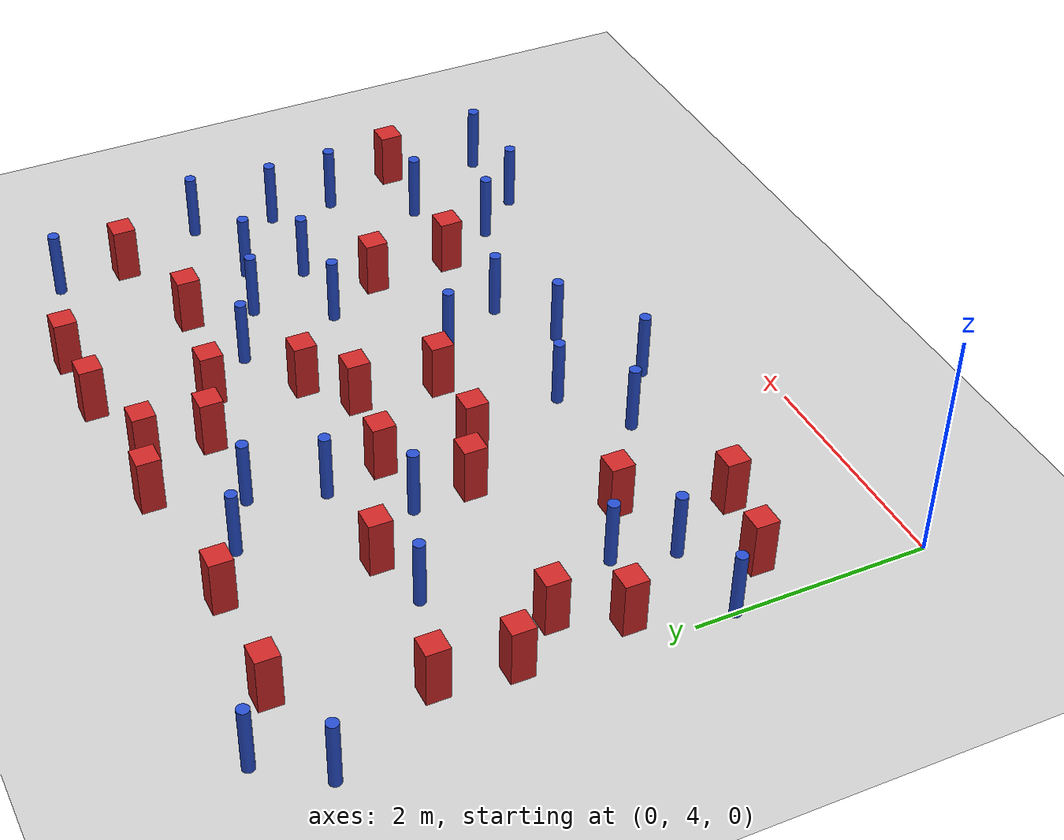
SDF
<sdf version="1.6">
 <world name="default">
  <model name="ground_plane">
   <static>1</static>
   <link name="link">
    <collision name="collision">
     <geometry><plane><normal>0 0 1</normal><size>100 100</size></plane></geometry>
     <surface><friction><ode><mu>100</mu><mu2>50</mu2></ode></friction></surface>
    </collision>
    <visual name="visual">
     <cast_shadows>0</cast_shadows>
     <geometry><plane><normal>0 0 1</normal><size>100 100</size></plane></geometry>
     <material>
      <ambient>1.0 1.0 1.0 1.0</ambient>
      <diffuse>0.8 0.8 0.8 1.0</diffuse>
      <specular>0.01 0.01 0.01 1.000000</specular>
     </material>
    </visual>
   </link>
  </model>
  <model name="pole_obstacle1">
   <static>true</static>
   <pose>0.876120784257 6.24800217098 7.38925637345e-09 -8.471706928e-08 1.24976765086e-08 -1.74513093015e-07</pose>
   <link name="link">
    <pose>0 0 0.3 0 -0 0</pose>
    <inertial>
     <mass>1</mass>
     <inertia><ixx>0.145833</ixx><ixy>0</ixy><ixz>0</ixz><iyy>0.145833</iyy><iyz>0</iyz><izz>0.125</izz></inertia>
    </inertial>
    <collision name="collision">
     <geometry><cylinder><radius>0.05</radius><length>.6</length></cylinder></geometry>
    </collision>
    <visual name="visual">
     <geometry><cylinder><radius>0.05</radius><length>.6</length></cylinder></geometry>
     <material>
      <script><name>Gazebo/Blue</name><uri>file://media/materials/scripts/gazebo.material</uri></script>
     </material>
    </visual>
   </link>
  </model>
  <model name="pole_obstacle2">
   <static>true</static>
   <pose>3.77386475802 6.2816502501 7.38925637345e-09 -8.47170692798e-08 1.24976765033e-08 -1.74513093019e-07</pose>
   <link name="link">
    <pose>0 0 0.3 0 -0 0</pose>
    <inertial>
     <mass>1</mass>
     <inertia><ixx>0.145833</ixx><ixy>0</ixy><ixz>0</ixz><iyy>0.145833</iyy><iyz>0</iyz><izz>0.125</izz></inertia>
    </inertial>
    <collision name="collision">
     <geometry><cylinder><radius>0.05</radius><length>.6</length></cylinder></geometry>
    </collision>
    <visual name="visual">
     <geometry><cylinder><radius>0.05</radius><length>.6</length></cylinder></geometry>
     <material>
      <script><name>Gazebo/Blue</name><uri>file://media/materials/scripts/gazebo.material</uri></script>
     </material>
    </visual>
   </link>
  </model>
  <model name="pole_obstacle5">
   <static>true</static>
   <pose>5.55673570257 4.84575330785 7.38925637345e-09 -8.47170692796e-08 1.24976764786e-08 -1.74513093032e-07</pose>
   <link name="link">
    <pose>0 0 0.3 0 -0 0</pose>
    <inertial>
     <mass>1</mass>
     <inertia><ixx>0.145833</ixx><ixy>0</ixy><ixz>0</ixz><iyy>0.145833</iyy><iyz>0</iyz><izz>0.125</izz></inertia>
    </inertial>
    <collision name="collision">
     <geometry><cylinder><radius>0.05</radius><length>.6</length></cylinder></geometry>
    </collision>
    <visual name="visual">
     <geometry><cylinder><radius>0.05</radius><length>.6</length></cylinder></geometry>
     <material>
      <script><name>Gazebo/Blue</name><uri>file://media/materials/scripts/gazebo.material</uri></script>
     </material>
    </visual>
   </link>
  </model>
  <model name="square_post_obstacle10">
   <static>true</static>
   <pose>5.04197095546 8.18872532669 1.91545236811e-07 -7.35059704564e-06 1.12565212e-07 2.39332434364e-05</pose>
   <link name="link">
    <pose>0 0 0.25 0 -0 0</pose>
    <inertial>
     <mass>100</mass>
     <inertia>
      <ixx>0.166667</ixx>
      <ixy>0</ixy>
      <ixz>0</ixz>
      <iyy>0.166667</iyy>
      <iyz>0</iyz>
      <izz>0.166667</izz>
     </inertia>
    </inertial>
    <collision name="collision"><geometry><box><size>.2 .2 .5</size></box></geometry></collision>
    <visual name="visual">
     <geometry><box><size>.2 .2 .5</size></box></geometry>
     <material>
      <script><name>Gazebo/Red</name><uri>file://media/materials/scripts/gazebo.material</uri></script>
     </material>
    </visual>
   </link>
  </model>
  <model name="pole_obstacle17">
   <static>true</static>
   <pose>6.28319913709 4.87998397393 7.38925637345e-09 -8.47170692796e-08 1.24976764786e-08 -1.74513093032e-07</pose>
   <link name="link">
    <pose>0 0 0.3 0 -0 0</pose>
    <inertial>
     <mass>1</mass>
     <inertia><ixx>0.145833</ixx><ixy>0</ixy><ixz>0</ixz><iyy>0.145833</iyy><iyz>0</iyz><izz>0.125</izz></inertia>
    </inertial>
    <collision name="collision">
     <geometry><cylinder><radius>0.05</radius><length>.6</length></cylinder></geometry>
    </collision>
    <visual name="visual">
     <geometry><cylinder><radius>0.05</radius><length>.6</length></cylinder></geometry>
     <material>
      <script><name>Gazebo/Blue</name><uri>file://media/materials/scripts/gazebo.material</uri></script>
     </material>
    </visual>
   </link>
  </model>
  <model name="square_post_obstacle18">
   <static>true</static>
   <pose>0.229390848685 8.011374936 1.91545236811e-07 -7.35059704564e-06 1.12565212e-07 2.39332434364e-05</pose>
   <link name="link">
    <pose>0 0 0.25 0 -0 0</pose>
    <inertial>
     <mass>100</mass>
     <inertia>
      <ixx>0.166667</ixx>
      <ixy>0</ixy>
      <ixz>0</ixz>
      <iyy>0.166667</iyy>
      <iyz>0</iyz>
      <izz>0.166667</izz>
     </inertia>
    </inertial>
    <collision name="collision"><geometry><box><size>.2 .2 .5</size></box></geometry></collision>
    <visual name="visual">
     <geometry><box><size>.2 .2 .5</size></box></geometry>
     <material>
      <script><name>Gazebo/Red</name><uri>file://media/materials/scripts/gazebo.material</uri></script>
     </material>
    </visual>
   </link>
  </model>
  <model name="pole_obstacle26">
   <static>true</static>
   <pose>-0.239033026966 8.94946432864 7.38925637345e-09 -8.47170692796e-08 1.24976764767e-08 -1.74513093034e-07</pose>
   <link name="link">
    <pose>0 0 0.3 0 -0 0</pose>
    <inertial>
     <mass>1</mass>
     <inertia><ixx>0.145833</ixx><ixy>0</ixy><ixz>0</ixz><iyy>0.145833</iyy><iyz>0</iyz><izz>0.125</izz></inertia>
    </inertial>
    <collision name="collision">
     <geometry><cylinder><radius>0.05</radius><length>.6</length></cylinder></geometry>
    </collision>
    <visual name="visual">
     <geometry><cylinder><radius>0.05</radius><length>.6</length></cylinder></geometry>
     <material>
      <script><name>Gazebo/Blue</name><uri>file://media/materials/scripts/gazebo.material</uri></script>
     </material>
    </visual>
   </link>
  </model>
  <model name="square_post_obstacle20">
   <static>true</static>
   <pose>5.98946311822 8.46246519438 1.91545236811e-07 -7.35059704564e-06 1.12565212e-07 2.39332434364e-05</pose>
   <link name="link">
    <pose>0 0 0.25 0 -0 0</pose>
    <inertial>
     <mass>100</mass>
     <inertia>
      <ixx>0.166667</ixx>
      <ixy>0</ixy>
      <ixz>0</ixz>
      <iyy>0.166667</iyy>
      <iyz>0</iyz>
      <izz>0.166667</izz>
     </inertia>
    </inertial>
    <collision name="collision"><geometry><box><size>.2 .2 .5</size></box></geometry></collision>
    <visual name="visual">
     <geometry><box><size>.2 .2 .5</size></box></geometry>
     <material>
      <script><name>Gazebo/Red</name><uri>file://media/materials/scripts/gazebo.material</uri></script>
     </material>
    </visual>
   </link>
  </model>
  <model name="square_post_obstacle25">
   <static>true</static>
   <pose>3.4216234774 8.55099060213 1.91545236811e-07 -7.35059704564e-06 1.12565212e-07 2.39332434364e-05</pose>
   <link name="link">
    <pose>0 0 0.25 0 -0 0</pose>
    <inertial>
     <mass>100</mass>
     <inertia>
      <ixx>0.166667</ixx>
      <ixy>0</ixy>
      <ixz>0</ixz>
      <iyy>0.166667</iyy>
      <iyz>0</iyz>
      <izz>0.166667</izz>
     </inertia>
    </inertial>
    <collision name="collision"><geometry><box><size>.2 .2 .5</size></box></geometry></collision>
    <visual name="visual">
     <geometry><box><size>.2 .2 .5</size></box></geometry>
     <material>
      <script><name>Gazebo/Red</name><uri>file://media/materials/scripts/gazebo.material</uri></script>
     </material>
    </visual>
   </link>
  </model>
  <model name="square_post_obstacle26">
   <static>true</static>
   <pose>4.22196910336 9.30223217906 1.91545236811e-07 -7.35059704564e-06 1.12565212e-07 2.39332434364e-05</pose>
   <link name="link">
    <pose>0 0 0.25 0 -0 0</pose>
    <inertial>
     <mass>100</mass>
     <inertia>
      <ixx>0.166667</ixx>
      <ixy>0</ixy>
      <ixz>0</ixz>
      <iyy>0.166667</iyy>
      <iyz>0</iyz>
      <izz>0.166667</izz>
     </inertia>
    </inertial>
    <collision name="collision"><geometry><box><size>.2 .2 .5</size></box></geometry></collision>
    <visual name="visual">
     <geometry><box><size>.2 .2 .5</size></box></geometry>
     <material>
      <script><name>Gazebo/Red</name><uri>file://media/materials/scripts/gazebo.material</uri></script>
     </material>
    </visual>
   </link>
  </model>
  <model name="pole_obstacle34">
   <static>true</static>
   <pose>0.00459999047083 5.6634931859 7.38925637345e-09 -8.47170692799e-08 1.24976765051e-08 -1.74513093018e-07</pose>
   <link name="link">
    <pose>0 0 0.3 0 -0 0</pose>
    <inertial>
     <mass>1</mass>
     <inertia><ixx>0.145833</ixx><ixy>0</ixy><ixz>0</ixz><iyy>0.145833</iyy><iyz>0</iyz><izz>0.125</izz></inertia>
    </inertial>
    <collision name="collision">
     <geometry><cylinder><radius>0.05</radius><length>.6</length></cylinder></geometry>
    </collision>
    <visual name="visual">
     <geometry><cylinder><radius>0.05</radius><length>.6</length></cylinder></geometry>
     <material>
      <script><name>Gazebo/Blue</name><uri>file://media/materials/scripts/gazebo.material</uri></script>
     </material>
    </visual>
   </link>
  </model>
  <model name="square_post_obstacle34">
   <static>true</static>
   <pose>2.95867496582 9.22284175794 1.91545236811e-07 -7.35059704564e-06 1.12565212e-07 2.39332434364e-05</pose>
   <link name="link">
    <pose>0 0 0.25 0 -0 0</pose>
    <inertial>
     <mass>100</mass>
     <inertia>
      <ixx>0.166667</ixx>
      <ixy>0</ixy>
      <ixz>0</ixz>
      <iyy>0.166667</iyy>
      <iyz>0</iyz>
      <izz>0.166667</izz>
     </inertia>
    </inertial>
    <collision name="collision"><geometry><box><size>.2 .2 .5</size></box></geometry></collision>
    <visual name="visual">
     <geometry><box><size>.2 .2 .5</size></box></geometry>
     <material>
      <script><name>Gazebo/Red</name><uri>file://media/materials/scripts/gazebo.material</uri></script>
     </material>
    </visual>
   </link>
  </model>
  <model name="pole_obstacle45">
   <static>true</static>
   <pose>1.0894423202 7.73519939335 7.38925637345e-09 -8.47170692799e-08 1.24976765033e-08 -1.74513093018e-07</pose>
   <link name="link">
    <pose>0 0 0.3 0 -0 0</pose>
    <inertial>
     <mass>1</mass>
     <inertia><ixx>0.145833</ixx><ixy>0</ixy><ixz>0</ixz><iyy>0.145833</iyy><iyz>0</iyz><izz>0.125</izz></inertia>
    </inertial>
    <collision name="collision">
     <geometry><cylinder><radius>0.05</radius><length>.6</length></cylinder></geometry>
    </collision>
    <visual name="visual">
     <geometry><cylinder><radius>0.05</radius><length>.6</length></cylinder></geometry>
     <material>
      <script><name>Gazebo/Blue</name><uri>file://media/materials/scripts/gazebo.material</uri></script>
     </material>
    </visual>
   </link>
  </model>
  <model name="square_post_obstacle38">
   <static>true</static>
   <pose>4.9053613051 5.78159586898 1.91545236811e-07 -7.35059704564e-06 1.12565212e-07 2.39332434364e-05</pose>
   <link name="link">
    <pose>0 0 0.25 0 -0 0</pose>
    <inertial>
     <mass>100</mass>
     <inertia>
      <ixx>0.166667</ixx>
      <ixy>0</ixy>
      <ixz>0</ixz>
      <iyy>0.166667</iyy>
      <iyz>0</iyz>
      <izz>0.166667</izz>
     </inertia>
    </inertial>
    <collision name="collision"><geometry><box><size>.2 .2 .5</size></box></geometry></collision>
    <visual name="visual">
     <geometry><box><size>.2 .2 .5</size></box></geometry>
     <material>
      <script><name>Gazebo/Red</name><uri>file://media/materials/scripts/gazebo.material</uri></script>
     </material>
    </visual>
   </link>
  </model>
  <model name="pole_obstacle57">
   <static>true</static>
   <pose>4.08175149637 5.69725566491 7.38925637345e-09 -8.47170692796e-08 1.24976764786e-08 -1.74513093032e-07</pose>
   <link name="link">
    <pose>0 0 0.3 0 -0 0</pose>
    <inertial>
     <mass>1</mass>
     <inertia><ixx>0.145833</ixx><ixy>0</ixy><ixz>0</ixz><iyy>0.145833</iyy><iyz>0</iyz><izz>0.125</izz></inertia>
    </inertial>
    <collision name="collision">
     <geometry><cylinder><radius>0.05</radius><length>.6</length></cylinder></geometry>
    </collision>
    <visual name="visual">
     <geometry><cylinder><radius>0.05</radius><length>.6</length></cylinder></geometry>
     <material>
      <script><name>Gazebo/Blue</name><uri>file://media/materials/scripts/gazebo.material</uri></script>
     </material>
    </visual>
   </link>
  </model>
  <model name="pole_obstacle63">
   <static>true</static>
   <pose>2.46949292795 7.92436977248 7.38925637345e-09 -8.47170692798e-08 1.24976765033e-08 -1.74513093019e-07</pose>
   <link name="link">
    <pose>0 0 0.3 0 -0 0</pose>
    <inertial>
     <mass>1</mass>
     <inertia><ixx>0.145833</ixx><ixy>0</ixy><ixz>0</ixz><iyy>0.145833</iyy><iyz>0</iyz><izz>0.125</izz></inertia>
    </inertial>
    <collision name="collision">
     <geometry><cylinder><radius>0.05</radius><length>.6</length></cylinder></geometry>
    </collision>
    <visual name="visual">
     <geometry><cylinder><radius>0.05</radius><length>.6</length></cylinder></geometry>
     <material>
      <script><name>Gazebo/Blue</name><uri>file://media/materials/scripts/gazebo.material</uri></script>
     </material>
    </visual>
   </link>
  </model>
  <model name="pole_obstacle67">
   <static>true</static>
   <pose>0.739452717041 5.7437439179 7.38925637345e-09 -8.471706928e-08 1.24976765086e-08 -1.74513093015e-07</pose>
   <link name="link">
    <pose>0 0 0.3 0 -0 0</pose>
    <inertial>
     <mass>1</mass>
     <inertia><ixx>0.145833</ixx><ixy>0</ixy><ixz>0</ixz><iyy>0.145833</iyy><iyz>0</iyz><izz>0.125</izz></inertia>
    </inertial>
    <collision name="collision">
     <geometry><cylinder><radius>0.05</radius><length>.6</length></cylinder></geometry>
    </collision>
    <visual name="visual">
     <geometry><cylinder><radius>0.05</radius><length>.6</length></cylinder></geometry>
     <material>
      <script><name>Gazebo/Blue</name><uri>file://media/materials/scripts/gazebo.material</uri></script>
     </material>
    </visual>
   </link>
  </model>
  <model name="square_post_obstacle57">
   <static>true</static>
   <pose>0.657525081863 9.11248540277 1.91545236811e-07 -7.35059704564e-06 1.12565212e-07 2.39332434364e-05</pose>
   <link name="link">
    <pose>0 0 0.25 0 -0 0</pose>
    <inertial>
     <mass>100</mass>
     <inertia>
      <ixx>0.166667</ixx>
      <ixy>0</ixy>
      <ixz>0</ixz>
      <iyy>0.166667</iyy>
      <iyz>0</iyz>
      <izz>0.166667</izz>
     </inertia>
    </inertial>
    <collision name="collision"><geometry><box><size>.2 .2 .5</size></box></geometry></collision>
    <visual name="visual">
     <geometry><box><size>.2 .2 .5</size></box></geometry>
     <material>
      <script><name>Gazebo/Red</name><uri>file://media/materials/scripts/gazebo.material</uri></script>
     </material>
    </visual>
   </link>
  </model>
  <model name="pole_obstacle69">
   <static>true</static>
   <pose>4.34859630782 7.92964344957 7.38925637345e-09 -8.47170692796e-08 1.24976764786e-08 -1.74513093032e-07</pose>
   <link name="link">
    <pose>0 0 0.3 0 -0 0</pose>
    <inertial>
     <mass>1</mass>
     <inertia><ixx>0.145833</ixx><ixy>0</ixy><ixz>0</ixz><iyy>0.145833</iyy><iyz>0</iyz><izz>0.125</izz></inertia>
    </inertial>
    <collision name="collision">
     <geometry><cylinder><radius>0.05</radius><length>.6</length></cylinder></geometry>
    </collision>
    <visual name="visual">
     <geometry><cylinder><radius>0.05</radius><length>.6</length></cylinder></geometry>
     <material>
      <script><name>Gazebo/Blue</name><uri>file://media/materials/scripts/gazebo.material</uri></script>
     </material>
    </visual>
   </link>
  </model>
  <model name="square_post_obstacle62">
   <static>true</static>
   <pose>4.87410728926 6.51234318695 1.91545236811e-07 -7.35059704564e-06 1.12565212e-07 2.39332434364e-05</pose>
   <link name="link">
    <pose>0 0 0.25 0 -0 0</pose>
    <inertial>
     <mass>100</mass>
     <inertia>
      <ixx>0.166667</ixx>
      <ixy>0</ixy>
      <ixz>0</ixz>
      <iyy>0.166667</iyy>
      <iyz>0</iyz>
      <izz>0.166667</izz>
     </inertia>
    </inertial>
    <collision name="collision"><geometry><box><size>.2 .2 .5</size></box></geometry></collision>
    <visual name="visual">
     <geometry><box><size>.2 .2 .5</size></box></geometry>
     <material>
      <script><name>Gazebo/Red</name><uri>file://media/materials/scripts/gazebo.material</uri></script>
     </material>
    </visual>
   </link>
  </model>
  <model name="pole_obstacle79">
   <static>true</static>
   <pose>0.120562041337 9.44628670915 7.38925637345e-09 -8.47170692796e-08 1.24976764716e-08 -1.74513093036e-07</pose>
   <link name="link">
    <pose>0 0 0.3 0 -0 0</pose>
    <inertial>
     <mass>1</mass>
     <inertia><ixx>0.145833</ixx><ixy>0</ixy><ixz>0</ixz><iyy>0.145833</iyy><iyz>0</iyz><izz>0.125</izz></inertia>
    </inertial>
    <collision name="collision">
     <geometry><cylinder><radius>0.05</radius><length>.6</length></cylinder></geometry>
    </collision>
    <visual name="visual">
     <geometry><cylinder><radius>0.05</radius><length>.6</length></cylinder></geometry>
     <material>
      <script><name>Gazebo/Blue</name><uri>file://media/materials/scripts/gazebo.material</uri></script>
     </material>
    </visual>
   </link>
  </model>
  <model name="pole_obstacle80">
   <static>true</static>
   <pose>4.58608665582 7.01118583748 7.38925637345e-09 -8.47170692796e-08 1.24976764786e-08 -1.74513093032e-07</pose>
   <link name="link">
    <pose>0 0 0.3 0 -0 0</pose>
    <inertial>
     <mass>1</mass>
     <inertia><ixx>0.145833</ixx><ixy>0</ixy><ixz>0</ixz><iyy>0.145833</iyy><iyz>0</iyz><izz>0.125</izz></inertia>
    </inertial>
    <collision name="collision">
     <geometry><cylinder><radius>0.05</radius><length>.6</length></cylinder></geometry>
    </collision>
    <visual name="visual">
     <geometry><cylinder><radius>0.05</radius><length>.6</length></cylinder></geometry>
     <material>
      <script><name>Gazebo/Blue</name><uri>file://media/materials/scripts/gazebo.material</uri></script>
     </material>
    </visual>
   </link>
  </model>
  <model name="pole_obstacle85">
   <static>true</static>
   <pose>5.50961949174 7.48692446619 7.38925637345e-09 -8.47170692796e-08 1.24976764786e-08 -1.74513093032e-07</pose>
   <link name="link">
    <pose>0 0 0.3 0 -0 0</pose>
    <inertial>
     <mass>1</mass>
     <inertia><ixx>0.145833</ixx><ixy>0</ixy><ixz>0</ixz><iyy>0.145833</iyy><iyz>0</iyz><izz>0.125</izz></inertia>
    </inertial>
    <collision name="collision">
     <geometry><cylinder><radius>0.05</radius><length>.6</length></cylinder></geometry>
    </collision>
    <visual name="visual">
     <geometry><cylinder><radius>0.05</radius><length>.6</length></cylinder></geometry>
     <material>
      <script><name>Gazebo/Blue</name><uri>file://media/materials/scripts/gazebo.material</uri></script>
     </material>
    </visual>
   </link>
  </model>
  <model name="square_post_obstacle75">
   <static>true</static>
   <pose>6.42638609833 5.70647542577 1.91545236811e-07 -7.35059704564e-06 1.12565212e-07 2.39332434364e-05</pose>
   <link name="link">
    <pose>0 0 0.25 0 -0 0</pose>
    <inertial>
     <mass>100</mass>
     <inertia>
      <ixx>0.166667</ixx>
      <ixy>0</ixy>
      <ixz>0</ixz>
      <iyy>0.166667</iyy>
      <iyz>0</iyz>
      <izz>0.166667</izz>
     </inertia>
    </inertial>
    <collision name="collision"><geometry><box><size>.2 .2 .5</size></box></geometry></collision>
    <visual name="visual">
     <geometry><box><size>.2 .2 .5</size></box></geometry>
     <material>
      <script><name>Gazebo/Red</name><uri>file://media/materials/scripts/gazebo.material</uri></script>
     </material>
    </visual>
   </link>
  </model>
  <model name="square_post_obstacle77">
   <static>true</static>
   <pose>1.06678120116 5.0999977474 1.91545236811e-07 -7.35059704564e-06 1.12565212e-07 2.39332434364e-05</pose>
   <link name="link">
    <pose>0 0 0.25 0 -0 0</pose>
    <inertial>
     <mass>100</mass>
     <inertia>
      <ixx>0.166667</ixx>
      <ixy>0</ixy>
      <ixz>0</ixz>
      <iyy>0.166667</iyy>
      <iyz>0</iyz>
      <izz>0.166667</izz>
     </inertia>
    </inertial>
    <collision name="collision"><geometry><box><size>.2 .2 .5</size></box></geometry></collision>
    <visual name="visual">
     <geometry><box><size>.2 .2 .5</size></box></geometry>
     <material>
      <script><name>Gazebo/Red</name><uri>file://media/materials/scripts/gazebo.material</uri></script>
     </material>
    </visual>
   </link>
  </model>
  <model name="square_post_obstacle85">
   <static>true</static>
   <pose>2.52638452703 6.63924643152 1.91545236811e-07 -7.35059704564e-06 1.12565212e-07 2.39332434364e-05</pose>
   <link name="link">
    <pose>0 0 0.25 0 -0 0</pose>
    <inertial>
     <mass>100</mass>
     <inertia>
      <ixx>0.166667</ixx>
      <ixy>0</ixy>
      <ixz>0</ixz>
      <iyy>0.166667</iyy>
      <iyz>0</iyz>
      <izz>0.166667</izz>
     </inertia>
    </inertial>
    <collision name="collision"><geometry><box><size>.2 .2 .5</size></box></geometry></collision>
    <visual name="visual">
     <geometry><box><size>.2 .2 .5</size></box></geometry>
     <material>
      <script><name>Gazebo/Red</name><uri>file://media/materials/scripts/gazebo.material</uri></script>
     </material>
    </visual>
   </link>
  </model>
  <model name="square_post_obstacle88">
   <static>true</static>
   <pose>3.9803606326 8.35505150488 1.91545236811e-07 -7.35059704564e-06 1.12565212e-07 2.39332434364e-05</pose>
   <link name="link">
    <pose>0 0 0.25 0 -0 0</pose>
    <inertial>
     <mass>100</mass>
     <inertia>
      <ixx>0.166667</ixx>
      <ixy>0</ixy>
      <ixz>0</ixz>
      <iyy>0.166667</iyy>
      <iyz>0</iyz>
      <izz>0.166667</izz>
     </inertia>
    </inertial>
    <collision name="collision"><geometry><box><size>.2 .2 .5</size></box></geometry></collision>
    <visual name="visual">
     <geometry><box><size>.2 .2 .5</size></box></geometry>
     <material>
      <script><name>Gazebo/Red</name><uri>file://media/materials/scripts/gazebo.material</uri></script>
     </material>
    </visual>
   </link>
  </model>
  <model name="square_post_obstacle94">
   <static>true</static>
   <pose>3.47828376148 9.0920531186 1.91545236811e-07 -7.35059704564e-06 1.12565212e-07 2.39332434364e-05</pose>
   <link name="link">
    <pose>0 0 0.25 0 -0 0</pose>
    <inertial>
     <mass>100</mass>
     <inertia>
      <ixx>0.166667</ixx>
      <ixy>0</ixy>
      <ixz>0</ixz>
      <iyy>0.166667</iyy>
      <iyz>0</iyz>
      <izz>0.166667</izz>
     </inertia>
    </inertial>
    <collision name="collision"><geometry><box><size>.2 .2 .5</size></box></geometry></collision>
    <visual name="visual">
     <geometry><box><size>.2 .2 .5</size></box></geometry>
     <material>
      <script><name>Gazebo/Red</name><uri>file://media/materials/scripts/gazebo.material</uri></script>
     </material>
    </visual>
   </link>
  </model>
  <model name="pole_obstacle103">
   <static>true</static>
   <pose>2.01353845747 7.37798437161 7.38925637345e-09 -8.47170692799e-08 1.24976765014e-08 -1.7451309302e-07</pose>
   <link name="link">
    <pose>0 0 0.3 0 -0 0</pose>
    <inertial>
     <mass>1</mass>
     <inertia><ixx>0.145833</ixx><ixy>0</ixy><ixz>0</ixz><iyy>0.145833</iyy><iyz>0</iyz><izz>0.125</izz></inertia>
    </inertial>
    <collision name="collision">
     <geometry><cylinder><radius>0.05</radius><length>.6</length></cylinder></geometry>
    </collision>
    <visual name="visual">
     <geometry><cylinder><radius>0.05</radius><length>.6</length></cylinder></geometry>
     <material>
      <script><name>Gazebo/Blue</name><uri>file://media/materials/scripts/gazebo.material</uri></script>
     </material>
    </visual>
   </link>
  </model>
  <model name="square_post_obstacle100">
   <static>true</static>
   <pose>3.78146538496 7.61129401366 1.91545236811e-07 -7.35059704564e-06 1.12565212e-07 2.39332434364e-05</pose>
   <link name="link">
    <pose>0 0 0.25 0 -0 0</pose>
    <inertial>
     <mass>100</mass>
     <inertia>
      <ixx>0.166667</ixx>
      <ixy>0</ixy>
      <ixz>0</ixz>
      <iyy>0.166667</iyy>
      <iyz>0</iyz>
      <izz>0.166667</izz>
     </inertia>
    </inertial>
    <collision name="collision"><geometry><box><size>.2 .2 .5</size></box></geometry></collision>
    <visual name="visual">
     <geometry><box><size>.2 .2 .5</size></box></geometry>
     <material>
      <script><name>Gazebo/Red</name><uri>file://media/materials/scripts/gazebo.material</uri></script>
     </material>
    </visual>
   </link>
  </model>
  <model name="pole_obstacle110">
   <static>true</static>
   <pose>2.20608511433 5.345821763 7.38925637345e-09 -8.47170692798e-08 1.24976765033e-08 -1.74513093019e-07</pose>
   <link name="link">
    <pose>0 0 0.3 0 -0 0</pose>
    <inertial>
     <mass>1</mass>
     <inertia><ixx>0.145833</ixx><ixy>0</ixy><ixz>0</ixz><iyy>0.145833</iyy><iyz>0</iyz><izz>0.125</izz></inertia>
    </inertial>
    <collision name="collision">
     <geometry><cylinder><radius>0.05</radius><length>.6</length></cylinder></geometry>
    </collision>
    <visual name="visual">
     <geometry><cylinder><radius>0.05</radius><length>.6</length></cylinder></geometry>
     <material>
      <script><name>Gazebo/Blue</name><uri>file://media/materials/scripts/gazebo.material</uri></script>
     </material>
    </visual>
   </link>
  </model>
  <model name="square_post_obstacle104">
   <static>true</static>
   <pose>0.488064464056 6.94841042491 1.91545236811e-07 -7.35059704564e-06 1.12565212e-07 2.39332434364e-05</pose>
   <link name="link">
    <pose>0 0 0.25 0 -0 0</pose>
    <inertial>
     <mass>100</mass>
     <inertia>
      <ixx>0.166667</ixx>
      <ixy>0</ixy>
      <ixz>0</ixz>
      <iyy>0.166667</iyy>
      <iyz>0</iyz>
      <izz>0.166667</izz>
     </inertia>
    </inertial>
    <collision name="collision"><geometry><box><size>.2 .2 .5</size></box></geometry></collision>
    <visual name="visual">
     <geometry><box><size>.2 .2 .5</size></box></geometry>
     <material>
      <script><name>Gazebo/Red</name><uri>file://media/materials/scripts/gazebo.material</uri></script>
     </material>
    </visual>
   </link>
  </model>
  <model name="square_post_obstacle116">
   <static>true</static>
   <pose>1.68849180308 9.08569750419 1.91545236811e-07 -7.35059704564e-06 1.12565212e-07 2.39332434364e-05</pose>
   <link name="link">
    <pose>0 0 0.25 0 -0 0</pose>
    <inertial>
     <mass>100</mass>
     <inertia>
      <ixx>0.166667</ixx>
      <ixy>0</ixy>
      <ixz>0</ixz>
      <iyy>0.166667</iyy>
      <iyz>0</iyz>
      <izz>0.166667</izz>
     </inertia>
    </inertial>
    <collision name="collision"><geometry><box><size>.2 .2 .5</size></box></geometry></collision>
    <visual name="visual">
     <geometry><box><size>.2 .2 .5</size></box></geometry>
     <material>
      <script><name>Gazebo/Red</name><uri>file://media/materials/scripts/gazebo.material</uri></script>
     </material>
    </visual>
   </link>
  </model>
  <model name="pole_obstacle128">
   <static>true</static>
   <pose>2.76391382571 5.74438717862 7.38925637345e-09 -8.47170692798e-08 1.24976765033e-08 -1.74513093019e-07</pose>
   <link name="link">
    <pose>0 0 0.3 0 -0 0</pose>
    <inertial>
     <mass>1</mass>
     <inertia><ixx>0.145833</ixx><ixy>0</ixy><ixz>0</ixz><iyy>0.145833</iyy><iyz>0</iyz><izz>0.125</izz></inertia>
    </inertial>
    <collision name="collision">
     <geometry><cylinder><radius>0.05</radius><length>.6</length></cylinder></geometry>
    </collision>
    <visual name="visual">
     <geometry><cylinder><radius>0.05</radius><length>.6</length></cylinder></geometry>
     <material>
      <script><name>Gazebo/Blue</name><uri>file://media/materials/scripts/gazebo.material</uri></script>
     </material>
    </visual>
   </link>
  </model>
  <model name="square_post_obstacle128">
   <static>true</static>
   <pose>1.58794859888 7.87035504976 1.91545236811e-07 -7.35059704564e-06 1.12565212e-07 2.39332434364e-05</pose>
   <link name="link">
    <pose>0 0 0.25 0 -0 0</pose>
    <inertial>
     <mass>100</mass>
     <inertia>
      <ixx>0.166667</ixx>
      <ixy>0</ixy>
      <ixz>0</ixz>
      <iyy>0.166667</iyy>
      <iyz>0</iyz>
      <izz>0.166667</izz>
     </inertia>
    </inertial>
    <collision name="collision"><geometry><box><size>.2 .2 .5</size></box></geometry></collision>
    <visual name="visual">
     <geometry><box><size>.2 .2 .5</size></box></geometry>
     <material>
      <script><name>Gazebo/Red</name><uri>file://media/materials/scripts/gazebo.material</uri></script>
     </material>
    </visual>
   </link>
  </model>
  <model name="square_post_obstacle129">
   <static>true</static>
   <pose>0.15693731002 7.38215109233 1.91545236811e-07 -7.35059704564e-06 1.12565212e-07 2.39332434364e-05</pose>
   <link name="link">
    <pose>0 0 0.25 0 -0 0</pose>
    <inertial>
     <mass>100</mass>
     <inertia>
      <ixx>0.166667</ixx>
      <ixy>0</ixy>
      <ixz>0</ixz>
      <iyy>0.166667</iyy>
      <iyz>0</iyz>
      <izz>0.166667</izz>
     </inertia>
    </inertial>
    <collision name="collision"><geometry><box><size>.2 .2 .5</size></box></geometry></collision>
    <visual name="visual">
     <geometry><box><size>.2 .2 .5</size></box></geometry>
     <material>
      <script><name>Gazebo/Red</name><uri>file://media/materials/scripts/gazebo.material</uri></script>
     </material>
    </visual>
   </link>
  </model>
  <model name="pole_obstacle134">
   <static>true</static>
   <pose>6.31463084448 7.69751915195 7.38925637345e-09 -8.47170692796e-08 1.24976764786e-08 -1.74513093032e-07</pose>
   <link name="link">
    <pose>0 0 0.3 0 -0 0</pose>
    <inertial>
     <mass>1</mass>
     <inertia><ixx>0.145833</ixx><ixy>0</ixy><ixz>0</ixz><iyy>0.145833</iyy><iyz>0</iyz><izz>0.125</izz></inertia>
    </inertial>
    <collision name="collision">
     <geometry><cylinder><radius>0.05</radius><length>.6</length></cylinder></geometry>
    </collision>
    <visual name="visual">
     <geometry><cylinder><radius>0.05</radius><length>.6</length></cylinder></geometry>
     <material>
      <script><name>Gazebo/Blue</name><uri>file://media/materials/scripts/gazebo.material</uri></script>
     </material>
    </visual>
   </link>
  </model>
  <model name="pole_obstacle136">
   <static>true</static>
   <pose>4.94460341582 7.62512599928 7.38925637345e-09 -8.47170692796e-08 1.24976764786e-08 -1.74513093032e-07</pose>
   <link name="link">
    <pose>0 0 0.3 0 -0 0</pose>
    <inertial>
     <mass>1</mass>
     <inertia><ixx>0.145833</ixx><ixy>0</ixy><ixz>0</ixz><iyy>0.145833</iyy><iyz>0</iyz><izz>0.125</izz></inertia>
    </inertial>
    <collision name="collision">
     <geometry><cylinder><radius>0.05</radius><length>.6</length></cylinder></geometry>
    </collision>
    <visual name="visual">
     <geometry><cylinder><radius>0.05</radius><length>.6</length></cylinder></geometry>
     <material>
      <script><name>Gazebo/Blue</name><uri>file://media/materials/scripts/gazebo.material</uri></script>
     </material>
    </visual>
   </link>
  </model>
  <model name="pole_obstacle138">
   <static>true</static>
   <pose>6.2117559669 6.97416391754 7.38925637345e-09 -8.47170692796e-08 1.24976764786e-08 -1.74513093032e-07</pose>
   <link name="link">
    <pose>0 0 0.3 0 -0 0</pose>
    <inertial>
     <mass>1</mass>
     <inertia><ixx>0.145833</ixx><ixy>0</ixy><ixz>0</ixz><iyy>0.145833</iyy><iyz>0</iyz><izz>0.125</izz></inertia>
    </inertial>
    <collision name="collision">
     <geometry><cylinder><radius>0.05</radius><length>.6</length></cylinder></geometry>
    </collision>
    <visual name="visual">
     <geometry><cylinder><radius>0.05</radius><length>.6</length></cylinder></geometry>
     <material>
      <script><name>Gazebo/Blue</name><uri>file://media/materials/scripts/gazebo.material</uri></script>
     </material>
    </visual>
   </link>
  </model>
  <model name="pole_obstacle143">
   <static>true</static>
   <pose>5.30607347879 7.01573525987 7.38925637345e-09 -8.47170692796e-08 1.24976764786e-08 -1.74513093032e-07</pose>
   <link name="link">
    <pose>0 0 0.3 0 -0 0</pose>
    <inertial>
     <mass>1</mass>
     <inertia><ixx>0.145833</ixx><ixy>0</ixy><ixz>0</ixz><iyy>0.145833</iyy><iyz>0</iyz><izz>0.125</izz></inertia>
    </inertial>
    <collision name="collision">
     <geometry><cylinder><radius>0.05</radius><length>.6</length></cylinder></geometry>
    </collision>
    <visual name="visual">
     <geometry><cylinder><radius>0.05</radius><length>.6</length></cylinder></geometry>
     <material>
      <script><name>Gazebo/Blue</name><uri>file://media/materials/scripts/gazebo.material</uri></script>
     </material>
    </visual>
   </link>
  </model>
  <model name="square_post_obstacle148">
   <static>true</static>
   <pose>1.38603417913 5.93423866343 1.91545236811e-07 -7.35059704564e-06 1.12565212e-07 2.39332434364e-05</pose>
   <link name="link">
    <pose>0 0 0.25 0 -0 0</pose>
    <inertial>
     <mass>100</mass>
     <inertia>
      <ixx>0.166667</ixx>
      <ixy>0</ixy>
      <ixz>0</ixz>
      <iyy>0.166667</iyy>
      <iyz>0</iyz>
      <izz>0.166667</izz>
     </inertia>
    </inertial>
    <collision name="collision"><geometry><box><size>.2 .2 .5</size></box></geometry></collision>
    <visual name="visual">
     <geometry><box><size>.2 .2 .5</size></box></geometry>
     <material>
      <script><name>Gazebo/Red</name><uri>file://media/materials/scripts/gazebo.material</uri></script>
     </material>
    </visual>
   </link>
  </model>
  <model name="square_post_obstacle150">
   <static>true</static>
   <pose>4.90738535007 9.31456733412 1.91545236811e-07 -7.35059704564e-06 1.12565212e-07 2.39332434364e-05</pose>
   <link name="link">
    <pose>0 0 0.25 0 -0 0</pose>
    <inertial>
     <mass>100</mass>
     <inertia>
      <ixx>0.166667</ixx>
      <ixy>0</ixy>
      <ixz>0</ixz>
      <iyy>0.166667</iyy>
      <iyz>0</iyz>
      <izz>0.166667</izz>
     </inertia>
    </inertial>
    <collision name="collision"><geometry><box><size>.2 .2 .5</size></box></geometry></collision>
    <visual name="visual">
     <geometry><box><size>.2 .2 .5</size></box></geometry>
     <material>
      <script><name>Gazebo/Red</name><uri>file://media/materials/scripts/gazebo.material</uri></script>
     </material>
    </visual>
   </link>
  </model>
  <model name="pole_obstacle155">
   <static>true</static>
   <pose>3.51648337142 5.3763668138 7.38925637345e-09 -8.47170692798e-08 1.24976765033e-08 -1.74513093019e-07</pose>
   <link name="link">
    <pose>0 0 0.3 0 -0 0</pose>
    <inertial>
     <mass>1</mass>
     <inertia><ixx>0.145833</ixx><ixy>0</ixy><ixz>0</ixz><iyy>0.145833</iyy><iyz>0</iyz><izz>0.125</izz></inertia>
    </inertial>
    <collision name="collision">
     <geometry><cylinder><radius>0.05</radius><length>.6</length></cylinder></geometry>
    </collision>
    <visual name="visual">
     <geometry><cylinder><radius>0.05</radius><length>.6</length></cylinder></geometry>
     <material>
      <script><name>Gazebo/Blue</name><uri>file://media/materials/scripts/gazebo.material</uri></script>
     </material>
    </visual>
   </link>
  </model>
  <model name="pole_obstacle164">
   <static>true</static>
   <pose>5.95272228198 9.07641951779 7.38925637345e-09 -8.471706928e-08 1.24976765081e-08 -1.74513093015e-07</pose>
   <link name="link">
    <pose>0 0 0.3 0 -0 0</pose>
    <inertial>
     <mass>1</mass>
     <inertia><ixx>0.145833</ixx><ixy>0</ixy><ixz>0</ixz><iyy>0.145833</iyy><iyz>0</iyz><izz>0.125</izz></inertia>
    </inertial>
    <collision name="collision">
     <geometry><cylinder><radius>0.05</radius><length>.6</length></cylinder></geometry>
    </collision>
    <visual name="visual">
     <geometry><cylinder><radius>0.05</radius><length>.6</length></cylinder></geometry>
     <material>
      <script><name>Gazebo/Blue</name><uri>file://media/materials/scripts/gazebo.material</uri></script>
     </material>
    </visual>
   </link>
  </model>
  <model name="square_post_obstacle164">
   <static>true</static>
   <pose>3.31887224992 6.58056419832 1.91545236811e-07 -7.35059704564e-06 1.12565212e-07 2.39332434364e-05</pose>
   <link name="link">
    <pose>0 0 0.25 0 -0 0</pose>
    <inertial>
     <mass>100</mass>
     <inertia>
      <ixx>0.166667</ixx>
      <ixy>0</ixy>
      <ixz>0</ixz>
      <iyy>0.166667</iyy>
      <iyz>0</iyz>
      <izz>0.166667</izz>
     </inertia>
    </inertial>
    <collision name="collision"><geometry><box><size>.2 .2 .5</size></box></geometry></collision>
    <visual name="visual">
     <geometry><box><size>.2 .2 .5</size></box></geometry>
     <material>
      <script><name>Gazebo/Red</name><uri>file://media/materials/scripts/gazebo.material</uri></script>
     </material>
    </visual>
   </link>
  </model>
  <model name="pole_obstacle168">
   <static>true</static>
   <pose>2.15794582448 8.79917107801 7.38925637345e-09 -8.47170692793e-08 1.24976764408e-08 -1.74513093041e-07</pose>
   <link name="link">
    <pose>0 0 0.3 0 -0 0</pose>
    <inertial>
     <mass>1</mass>
     <inertia><ixx>0.145833</ixx><ixy>0</ixy><ixz>0</ixz><iyy>0.145833</iyy><iyz>0</iyz><izz>0.125</izz></inertia>
    </inertial>
    <collision name="collision">
     <geometry><cylinder><radius>0.05</radius><length>.6</length></cylinder></geometry>
    </collision>
    <visual name="visual">
     <geometry><cylinder><radius>0.05</radius><length>.6</length></cylinder></geometry>
     <material>
      <script><name>Gazebo/Blue</name><uri>file://media/materials/scripts/gazebo.material</uri></script>
     </material>
    </visual>
   </link>
  </model>
  <model name="square_post_obstacle180">
   <static>true</static>
   <pose>3.38772301919 7.2982205029 1.91545236811e-07 -7.35059704564e-06 1.12565212e-07 2.39332434364e-05</pose>
   <link name="link">
    <pose>0 0 0.25 0 -0 0</pose>
    <inertial>
     <mass>100</mass>
     <inertia>
      <ixx>0.166667</ixx>
      <ixy>0</ixy>
      <ixz>0</ixz>
      <iyy>0.166667</iyy>
      <iyz>0</iyz>
      <izz>0.166667</izz>
     </inertia>
    </inertial>
    <collision name="collision"><geometry><box><size>.2 .2 .5</size></box></geometry></collision>
    <visual name="visual">
     <geometry><box><size>.2 .2 .5</size></box></geometry>
     <material>
      <script><name>Gazebo/Red</name><uri>file://media/materials/scripts/gazebo.material</uri></script>
     </material>
    </visual>
   </link>
  </model>
  <model name="square_post_obstacle181">
   <static>true</static>
   <pose>2.04123230693 6.87754693534 1.91545236811e-07 -7.35059704564e-06 1.12565212e-07 2.39332434364e-05</pose>
   <link name="link">
    <pose>0 0 0.25 0 -0 0</pose>
    <inertial>
     <mass>100</mass>
     <inertia>
      <ixx>0.166667</ixx>
      <ixy>0</ixy>
      <ixz>0</ixz>
      <iyy>0.166667</iyy>
      <iyz>0</iyz>
      <izz>0.166667</izz>
     </inertia>
    </inertial>
    <collision name="collision"><geometry><box><size>.2 .2 .5</size></box></geometry></collision>
    <visual name="visual">
     <geometry><box><size>.2 .2 .5</size></box></geometry>
     <material>
      <script><name>Gazebo/Red</name><uri>file://media/materials/scripts/gazebo.material</uri></script>
     </material>
    </visual>
   </link>
  </model>
  <model name="square_post_obstacle201">
   <static>true</static>
   <pose>2.57659448528 7.41929119839 1.91545236811e-07 -7.35059704564e-06 1.12565212e-07 2.39332434364e-05</pose>
   <link name="link">
    <pose>0 0 0.25 0 -0 0</pose>
    <inertial>
     <mass>100</mass>
     <inertia>
      <ixx>0.166667</ixx>
      <ixy>0</ixy>
      <ixz>0</ixz>
      <iyy>0.166667</iyy>
      <iyz>0</iyz>
      <izz>0.166667</izz>
     </inertia>
    </inertial>
    <collision name="collision"><geometry><box><size>.2 .2 .5</size></box></geometry></collision>
    <visual name="visual">
     <geometry><box><size>.2 .2 .5</size></box></geometry>
     <material>
      <script><name>Gazebo/Red</name><uri>file://media/materials/scripts/gazebo.material</uri></script>
     </material>
    </visual>
   </link>
  </model>
  <model name="square_post_obstacle207">
   <static>true</static>
   <pose>0.24062854014 6.43725078015 1.91545236811e-07 -7.35059704564e-06 1.12565212e-07 2.39332434364e-05</pose>
   <link name="link">
    <pose>0 0 0.25 0 -0 0</pose>
    <inertial>
     <mass>100</mass>
     <inertia>
      <ixx>0.166667</ixx>
      <ixy>0</ixy>
      <ixz>0</ixz>
      <iyy>0.166667</iyy>
      <iyz>0</iyz>
      <izz>0.166667</izz>
     </inertia>
    </inertial>
    <collision name="collision"><geometry><box><size>.2 .2 .5</size></box></geometry></collision>
    <visual name="visual">
     <geometry><box><size>.2 .2 .5</size></box></geometry>
     <material>
      <script><name>Gazebo/Red</name><uri>file://media/materials/scripts/gazebo.material</uri></script>
     </material>
    </visual>
   </link>
  </model>
  <model name="pole_obstacle194">
   <static>true</static>
   <pose>5.18634460138 5.26575408776 7.38925637345e-09 -8.47170692796e-08 1.24976764786e-08 -1.74513093032e-07</pose>
   <link name="link">
    <pose>0 0 0.3 0 -0 0</pose>
    <inertial>
     <mass>1</mass>
     <inertia><ixx>0.145833</ixx><ixy>0</ixy><ixz>0</ixz><iyy>0.145833</iyy><iyz>0</iyz><izz>0.125</izz></inertia>
    </inertial>
    <collision name="collision">
     <geometry><cylinder><radius>0.05</radius><length>.6</length></cylinder></geometry>
    </collision>
    <visual name="visual">
     <geometry><cylinder><radius>0.05</radius><length>.6</length></cylinder></geometry>
     <material>
      <script><name>Gazebo/Blue</name><uri>file://media/materials/scripts/gazebo.material</uri></script>
     </material>
    </visual>
   </link>
  </model>
  <model name="pole_obstacle197">
   <static>true</static>
   <pose>6.21516912894 6.38895182631 7.38925637345e-09 -8.47170692796e-08 1.24976764786e-08 -1.74513093032e-07</pose>
   <link name="link">
    <pose>0 0 0.3 0 -0 0</pose>
    <inertial>
     <mass>1</mass>
     <inertia><ixx>0.145833</ixx><ixy>0</ixy><ixz>0</ixz><iyy>0.145833</iyy><iyz>0</iyz><izz>0.125</izz></inertia>
    </inertial>
    <collision name="collision">
     <geometry><cylinder><radius>0.05</radius><length>.6</length></cylinder></geometry>
    </collision>
    <visual name="visual">
     <geometry><cylinder><radius>0.05</radius><length>.6</length></cylinder></geometry>
     <material>
      <script><name>Gazebo/Blue</name><uri>file://media/materials/scripts/gazebo.material</uri></script>
     </material>
    </visual>
   </link>
  </model>
  <model name="pole_obstacle199">
   <static>true</static>
   <pose>5.75967330499 5.72716304484 7.38925637345e-09 -8.47170692796e-08 1.24976764786e-08 -1.74513093032e-07</pose>
   <link name="link">
    <pose>0 0 0.3 0 -0 0</pose>
    <inertial>
     <mass>1</mass>
     <inertia><ixx>0.145833</ixx><ixy>0</ixy><ixz>0</ixz><iyy>0.145833</iyy><iyz>0</iyz><izz>0.125</izz></inertia>
    </inertial>
    <collision name="collision">
     <geometry><cylinder><radius>0.05</radius><length>.6</length></cylinder></geometry>
    </collision>
    <visual name="visual">
     <geometry><cylinder><radius>0.05</radius><length>.6</length></cylinder></geometry>
     <material>
      <script><name>Gazebo/Blue</name><uri>file://media/materials/scripts/gazebo.material</uri></script>
     </material>
    </visual>
   </link>
  </model>
  <model name="pole_obstacle204">
   <static>true</static>
   <pose>2.78156382657 4.93841653705 7.38925637345e-09 -8.47170692798e-08 1.24976765033e-08 -1.74513093019e-07</pose>
   <link name="link">
    <pose>0 0 0.3 0 -0 0</pose>
    <inertial>
     <mass>1</mass>
     <inertia><ixx>0.145833</ixx><ixy>0</ixy><ixz>0</ixz><iyy>0.145833</iyy><iyz>0</iyz><izz>0.125</izz></inertia>
    </inertial>
    <collision name="collision">
     <geometry><cylinder><radius>0.05</radius><length>.6</length></cylinder></geometry>
    </collision>
    <visual name="visual">
     <geometry><cylinder><radius>0.05</radius><length>.6</length></cylinder></geometry>
     <material>
      <script><name>Gazebo/Blue</name><uri>file://media/materials/scripts/gazebo.material</uri></script>
     </material>
    </visual>
   </link>
  </model>
  <model name="pole_obstacle207">
   <static>true</static>
   <pose>2.65890590504 8.53017844076 7.38925637345e-09 -8.47170692793e-08 1.24976764408e-08 -1.74513093041e-07</pose>
   <link name="link">
    <pose>0 0 0.3 0 -0 0</pose>
    <inertial>
     <mass>1</mass>
     <inertia><ixx>0.145833</ixx><ixy>0</ixy><ixz>0</ixz><iyy>0.145833</iyy><iyz>0</iyz><izz>0.125</izz></inertia>
    </inertial>
    <collision name="collision">
     <geometry><cylinder><radius>0.05</radius><length>.6</length></cylinder></geometry>
    </collision>
    <visual name="visual">
     <geometry><cylinder><radius>0.05</radius><length>.6</length></cylinder></geometry>
     <material>
      <script><name>Gazebo/Blue</name><uri>file://media/materials/scripts/gazebo.material</uri></script>
     </material>
    </visual>
   </link>
  </model>
  <model name="square_post_obstacle215">
   <static>true</static>
   <pose>0.383439863283 5.2604401066 1.91545236811e-07 -7.35059704564e-06 1.12565212e-07 2.39332434364e-05</pose>
   <link name="link">
    <pose>0 0 0.25 0 -0 0</pose>
    <inertial>
     <mass>100</mass>
     <inertia>
      <ixx>0.166667</ixx>
      <ixy>0</ixy>
      <ixz>0</ixz>
      <iyy>0.166667</iyy>
      <iyz>0</iyz>
      <izz>0.166667</izz>
     </inertia>
    </inertial>
    <collision name="collision"><geometry><box><size>.2 .2 .5</size></box></geometry></collision>
    <visual name="visual">
     <geometry><box><size>.2 .2 .5</size></box></geometry>
     <material>
      <script><name>Gazebo/Red</name><uri>file://media/materials/scripts/gazebo.material</uri></script>
     </material>
    </visual>
   </link>
  </model>
 </world>
</sdf>
